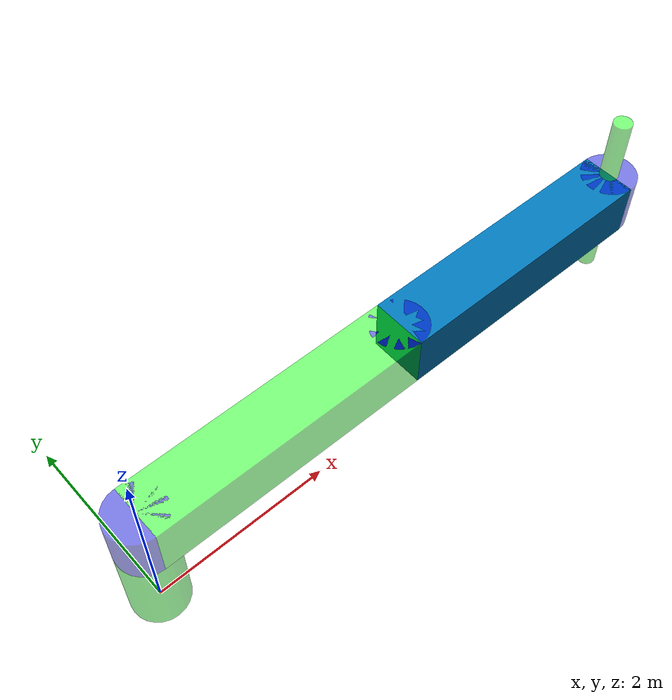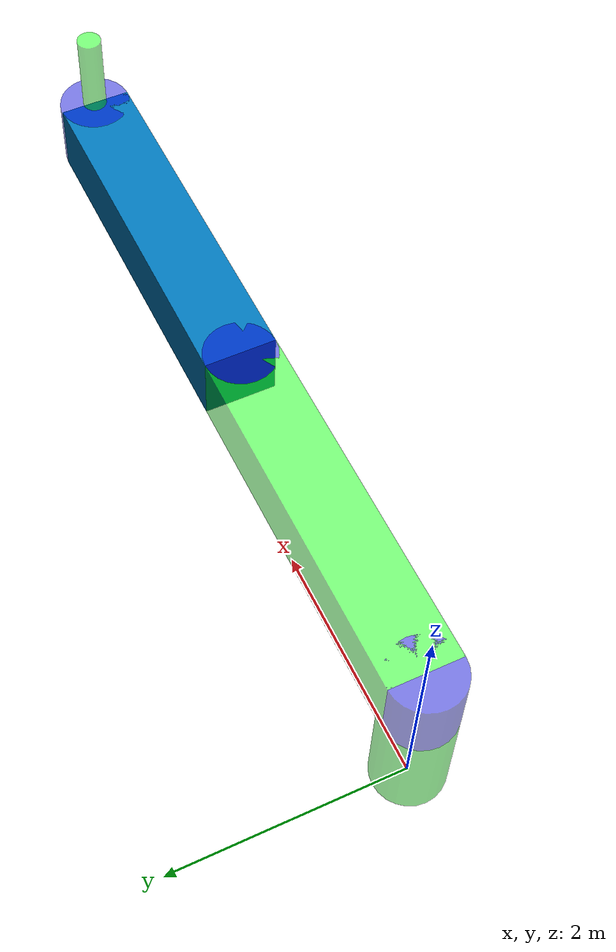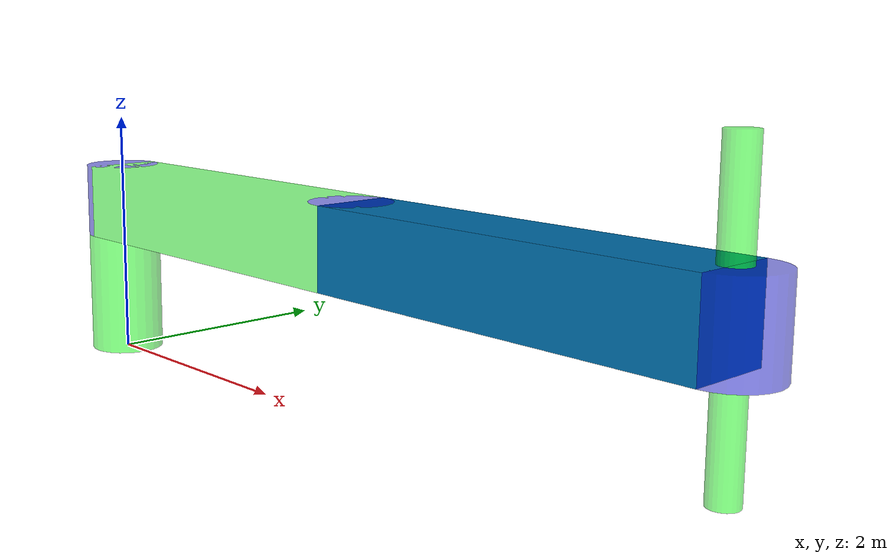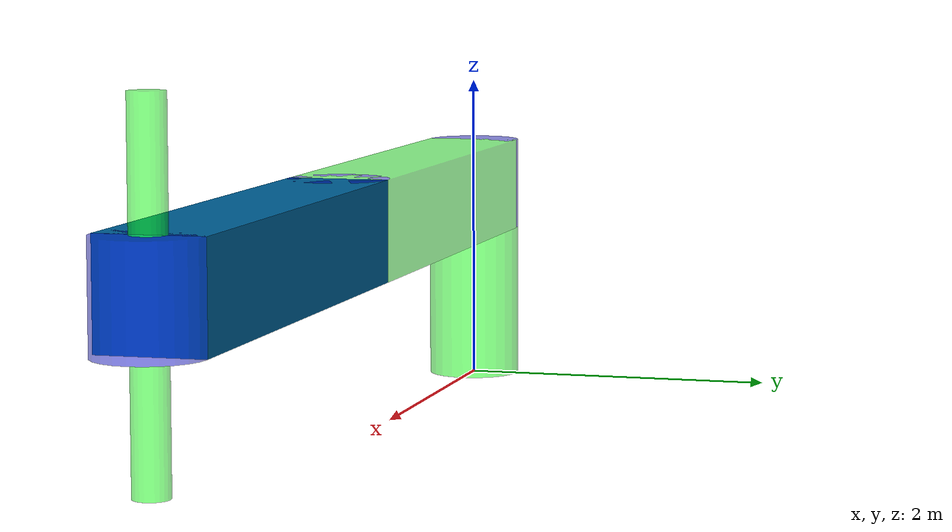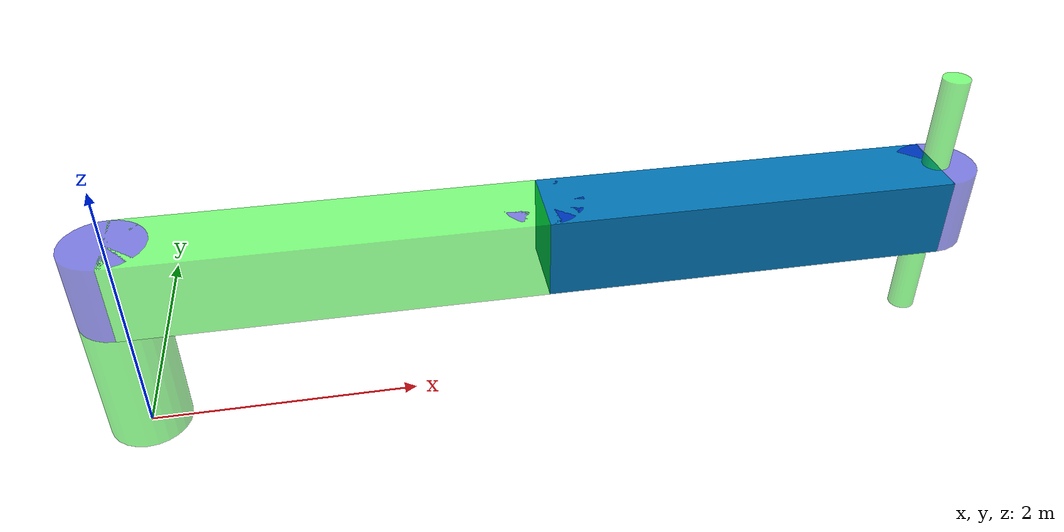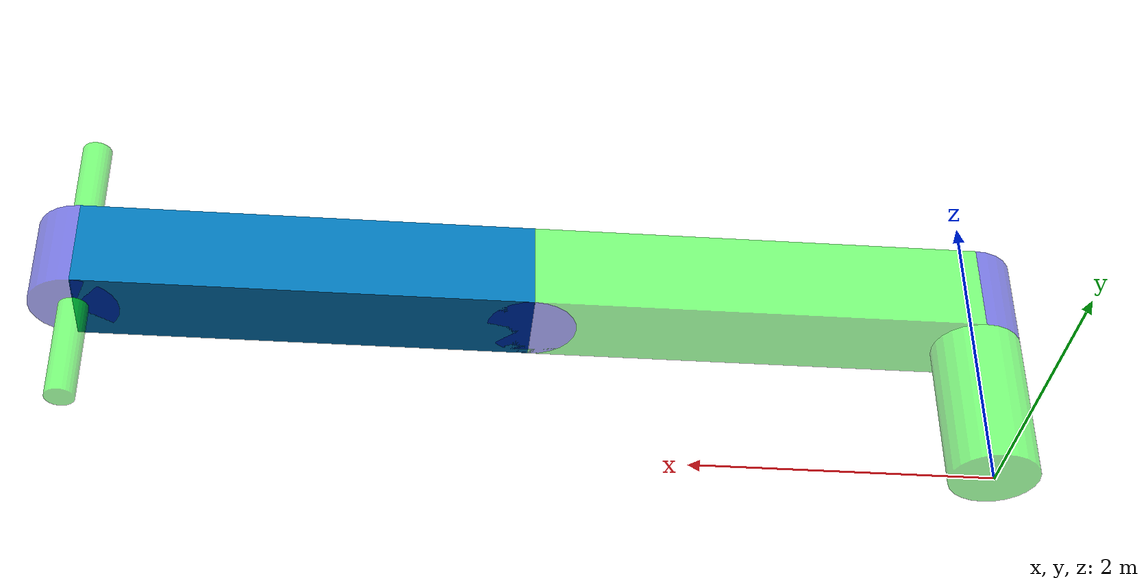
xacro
<?xml version="1.0"?>
<robot name="scara" xmlns:xacro="http://ros.org/wiki/xacro">
    <xacro:property name="height" value="1"/>
    <xacro:property name="length" value="3"/>

    <!--    define materials-->
    <material name="blue">
        <color rgba="0 0 0.8 0.5"/>
    </material>

    <material name="green">
        <color rgba="0 1 0 0.5"/>
    </material>

    <!--  base link-->
    <link name="base_link">
        <visual>
            <origin rpy="0 0 0" xyz="0 0 0.5"/>
            <geometry>
                <cylinder length="${height}" radius="0.3"/>
            </geometry>
            <material name="green"/>
        </visual>
    </link>

    <!--  link 1b-->
    <link name="link1b">
        <visual>
            <origin rpy="0 0 0" xyz="0 0 0"/>
            <geometry>
                <cylinder length="0.6" radius="0.3"/>
            </geometry>
            <material name="blue"/>
        </visual>
    </link>

    <!--  link 1-->
    <link name="link1">
        <visual>
            <origin rpy="0 0 0" xyz="1.5 0 0"/>
            <geometry>
                <box size="${length} 0.6 0.6"/>
            </geometry>
            <material name="green"/>
        </visual>
    </link>

    <!--  link 2b-->
    <link name="link2b">
        <visual>
            <origin rpy="0 0 0" xyz="0 0 0"/>
            <geometry>
                <cylinder length="0.6" radius="0.3"/>
            </geometry>
            <material name="blue"/>
        </visual>
    </link>

    <!--  link 2-->
    <link name="link2">
        <visual>
            <origin rpy="0 0 0" xyz="1.5 0 0"/>
            <geometry>
                <box size="${length} 0.6 0.6"/>
            </geometry>
        </visual>
    </link>

    <!--  link 2c-->
    <link name="link2c">
        <visual>
            <origin rpy="0 0 0" xyz="0 0 0"/>
            <geometry>
                <cylinder length="0.6" radius="0.3"/>
            </geometry>
            <material name="blue"/>
        </visual>
    </link>

    <!--  link ee-->
    <link name="link_ee">
        <visual>
            <origin rpy="0 0 0" xyz="0 0 1"/>
            <geometry>
                <cylinder length="2" radius="0.1"/>
            </geometry>
            <material name="green"/>
        </visual>
    </link>

    <!--    *********************************** JOINTS ***********************************-->

    <!--  joint base link to link 1 (6.28 = 2*PI)-->
    <joint name="base_link_to_link1" type="continuous">
        <axis xyz="0 0 1"/>
        <limit effort="1000.0" lower="0.0" upper="6.28" velocity="0.5"/>
        <origin rpy="0 0 0" xyz="0 0 1.3"/>
        <parent link="base_link"/>
        <child link="link1"/>
    </joint>

    <!--    fixed link1 to link 1b-->
    <joint name="link1_to_link1b" type="fixed">
        <origin rpy="0 0 0" xyz="0 0 0"/>
        <parent link="link1"/>
        <child link="link1b"/>
    </joint>

    <!--  link 1 to link 2b-->
    <joint name="link1_to_link2b" type="fixed">
        <origin rpy="0 0 0" xyz="3 0 0"/>
        <parent link="link1"/>
        <child link="link2b"/>
    </joint>

    <!--    link 2b to link 2-->
    <joint name="link2b_to_link2" type="revolute">
        <axis xyz="0 0 1"/>
        <limit effort="1000.0" lower="-2.5" upper="2.5" velocity="0.5"/>
        <origin rpy="0 0 0" xyz="0 0 0"/>
        <parent link="link2b"/>
        <child link="link2"/>
    </joint>

    <!--  link 2 to link 2c-->
    <joint name="link2_to_link2c" type="fixed">
        <origin rpy="0 0 0" xyz="3 0 0"/>
        <parent link="link2"/>
        <child link="link2c"/>
    </joint>

    <joint name="link2c_to_link_ee" type="prismatic">
        <axis xyz="0 0 1"/>
        <parent link="link2c"/>
        <child link="link_ee"/>
        <limit effort="1000.0" lower="-1.5" upper="-0.5" velocity="0.5"/>
        <origin rpy="0 0 0" xyz="0 0 0"/>
    </joint>
</robot>
